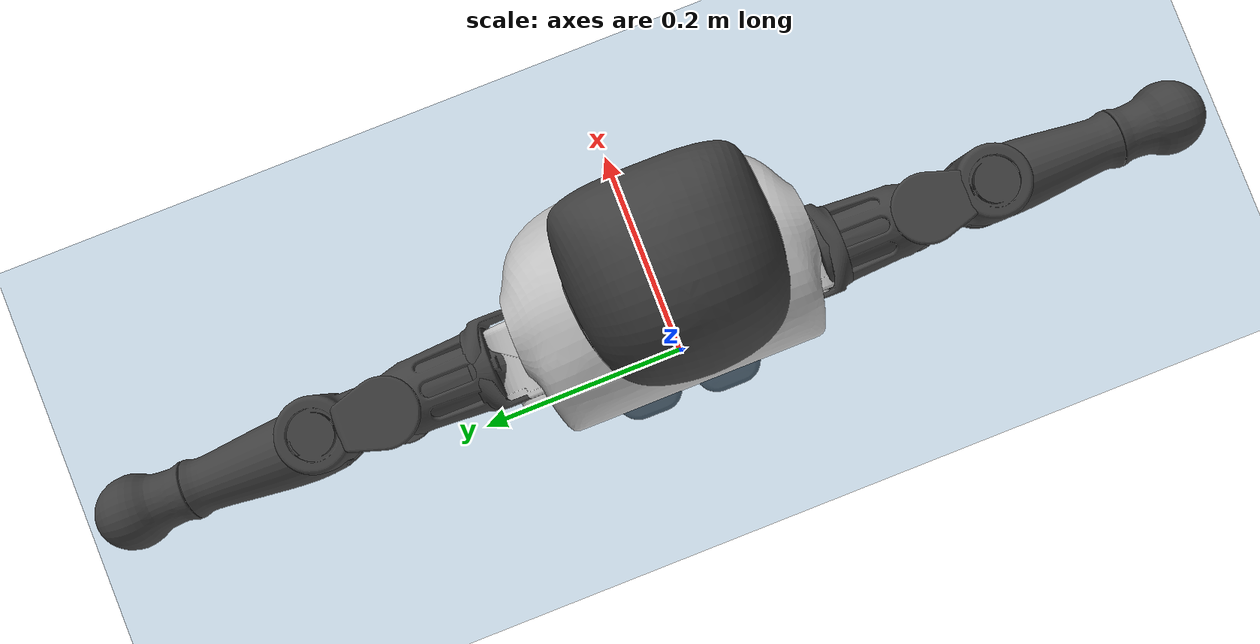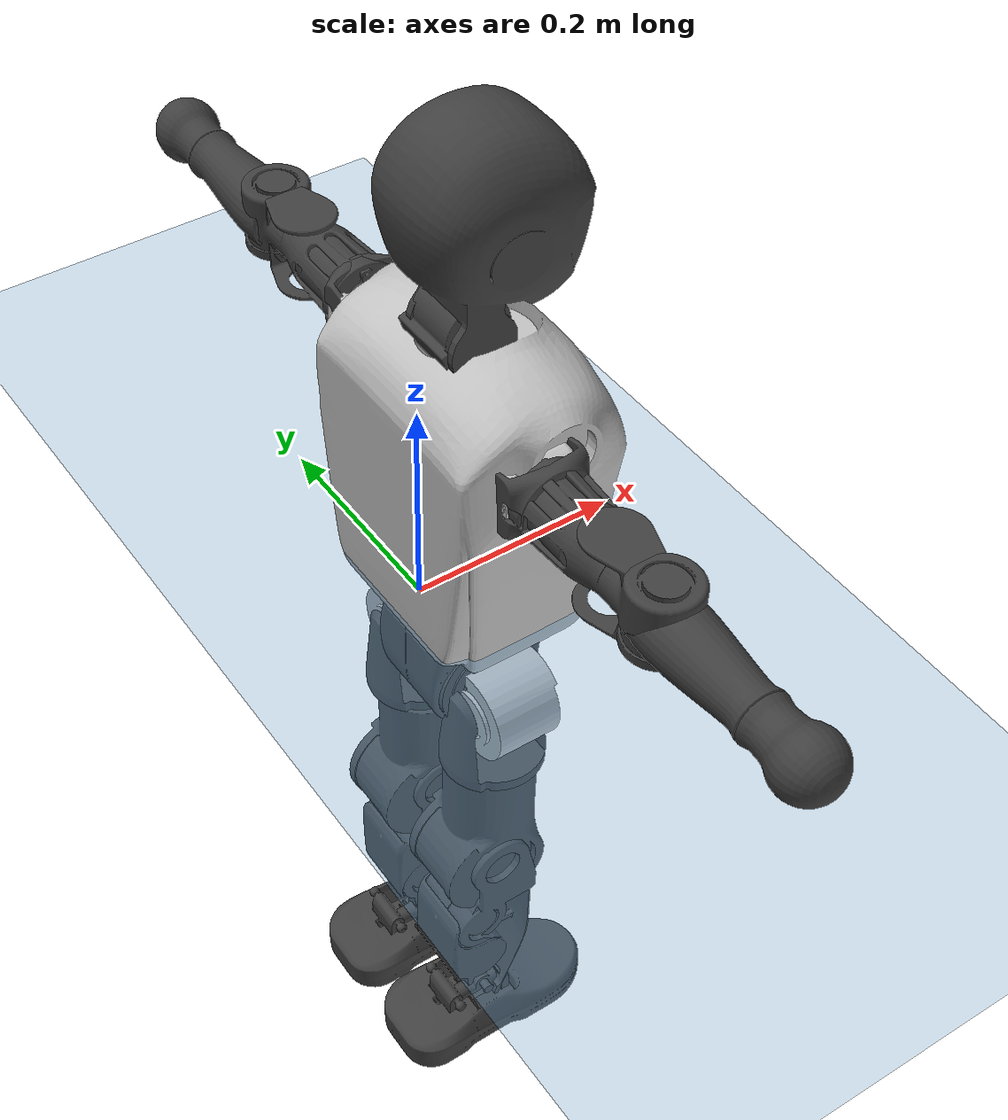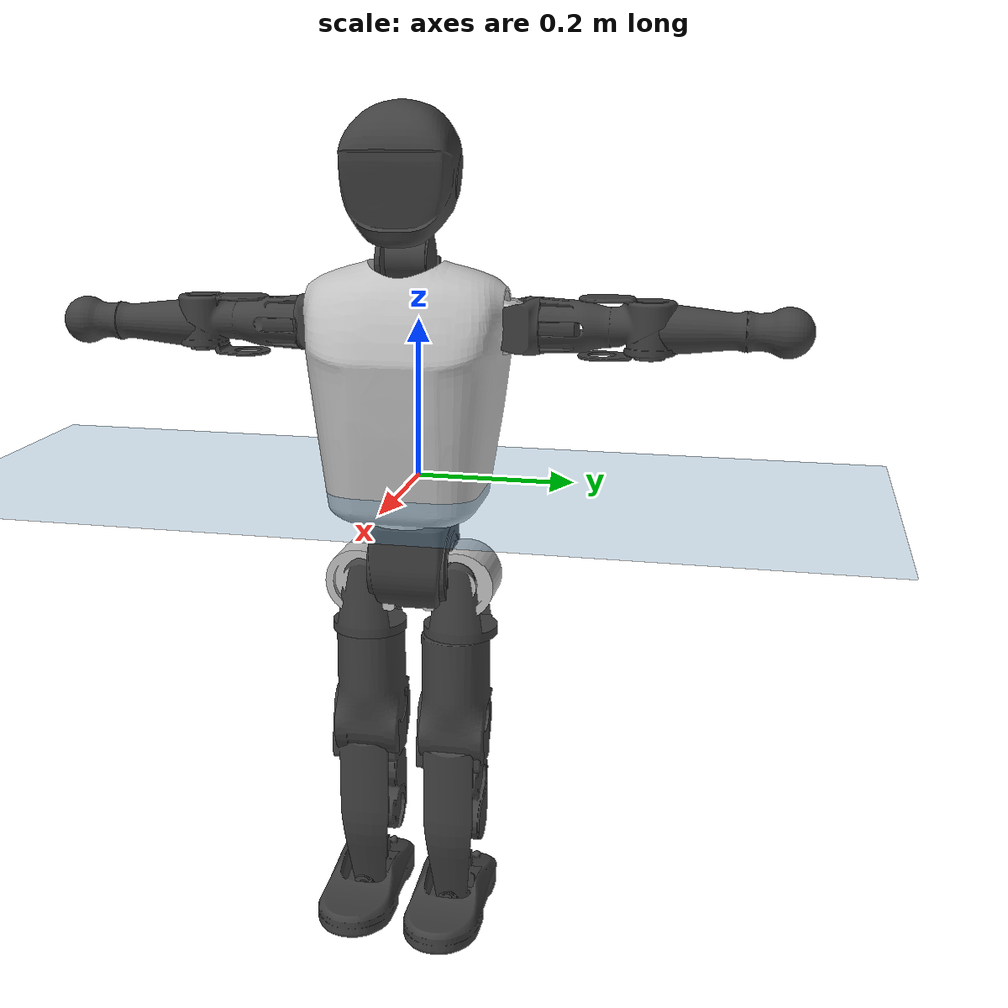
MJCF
<mujoco model="T1">
  <compiler angle="radian" assetdir="assets" balanceinertia="true" inertiafromgeom="false"/>

  <option timestep="0.005" density="1.2" viscosity="2e-05"/>

  <size nkey="1"/>

  <visual>
    <quality shadowsize="8192"/>
    <map shadowclip="0.5"/>
  </visual>

  <default>
    <default class="/">
      <joint armature="0.01" damping="0.01" frictionloss="0.1"/>
      <geom contype="0" conaffinity="0" group="1" solref="-1000 -80"/>
      <site size="0.01 0.005 0.005" group="5"/>
      <general forcelimited="true" biastype="affine" gainprm="25" biasprm="0 -25 -0.6"/>
      <default class="t1">
        <geom rgba="0.25 0.25 0.25 1"/>
        <default class="visual">
          <geom type="mesh" group="2"/>
        </default>
        <default class="collision">
          <geom group="3"/>
        </default>
        <default class="foot">
          <geom size="0.1115 0.05 0.015" type="box" condim="6" group="4" priority="1" solimp="0.015 1 0.015"/>
        </default>
        <default class="reward_collision_sphere">
          <geom group="5" rgba="1 0 0 1"/>
        </default>
      </default>
    </default>
  </default>

  <asset>
    <texture type="skybox" colorspace="auto" name="//unnamed_texture_0" builtin="gradient" rgb1="0.95 0.95 0.95" rgb2="0.95 0.95 0.95" width="100" height="600"/>
    <texture type="2d" colorspace="auto" name="texplane" builtin="checker" rgb1="0.345 0.575 0.748" rgb2="0.345 0.575 0.748" markrgb="1 1 1" width="512" height="512"/>
    <material name="MatPlane" class="/" texture="texplane" texuniform="true" texrepeat="2 2" specular="0.9"/>
    <mesh name="Trunk" class="/" file="Trunk.stl"/>
    <mesh name="H1" class="/" file="H1.stl"/>
    <mesh name="H2" class="/" file="H2.stl"/>
    <mesh name="AL1" class="/" file="AL1.stl"/>
    <mesh name="AL2" class="/" file="AL2.stl"/>
    <mesh name="AL3" class="/" file="AL3.stl"/>
    <mesh name="left_hand_link" class="/" file="left_hand_link.stl"/>
    <mesh name="AR1" class="/" file="AR1.stl"/>
    <mesh name="AR2" class="/" file="AR2.stl"/>
    <mesh name="AR3" class="/" file="AR3.stl"/>
    <mesh name="right_hand_link" class="/" file="right_hand_link.stl"/>
    <mesh name="Waist" class="/" file="Waist.stl"/>
    <mesh name="Hip_Pitch_Left" class="/" file="Hip_Pitch_Left.stl"/>
    <mesh name="Hip_Roll_Left" class="/" file="Hip_Roll_Left.stl"/>
    <mesh name="Hip_Yaw_Left" class="/" file="Hip_Yaw_Left.stl"/>
    <mesh name="Shank_Left" class="/" file="Shank_Left.stl"/>
    <mesh name="Ankle_Cross_Left" class="/" file="Ankle_Cross_Left.stl"/>
    <mesh name="left_foot_link" class="/" file="left_foot_link.stl"/>
    <mesh name="Hip_Pitch_Right" class="/" file="Hip_Pitch_Right.stl"/>
    <mesh name="Hip_Roll_Right" class="/" file="Hip_Roll_Right.stl"/>
    <mesh name="Hip_Yaw_Right" class="/" file="Hip_Yaw_Right.stl"/>
    <mesh name="Shank_Right" class="/" file="Shank_Right.stl"/>
    <mesh name="Ankle_Cross_Right" class="/" file="Ankle_Cross_Right.stl"/>
    <mesh name="right_foot_link" class="/" file="right_foot_link.stl"/>
  </asset>

  <worldbody>
    <geom name="floor" class="/" size="100 100 0.125" type="plane" group="0" material="MatPlane"/>
    <light name="toplight_shadow" class="/" pos="0 0 5" dir="0.0990148 0.0990148 -0.990148" type="directional" ambient="0.04 0.04 0.04" diffuse="0.55 0.55 0.55" specular="0.12 0.12 0.12"/>
    <light name="toplight_fill" class="/" pos="0 0 5" dir="0.0990148 0.0990148 -0.990148" type="directional" castshadow="false" ambient="0.04 0.04 0.04" diffuse="0.3 0.3 0.3" specular="0.08 0.08 0.08"/>
    <body name="trunk" childclass="t1" pos="-0.00144434 0.000107614 -0.000582403" quat="0.999997 0.00224845 0.000905694 0.000976057">
      <inertial pos="0.0402585 0.00311422 0.09317" quat="0.999929 -0.00413299 -0.00812433 0.00765966" mass="4.8126" diaginertia="0.0135623 0.00726223 0.0339828"/>
      <joint name="//unnamed_joint_0" type="free" armature="0" damping="0" frictionloss="0"/>
      <geom name="//unnamed_geom_1" class="visual" rgba="0.76 0.76 0.76 1" mesh="Trunk"/>
      <geom name="//unnamed_geom_2" class="collision" size="0.0548333 0.073111 0.109667" pos="0.0410255 0 0.106624" type="box"/>
      <geom name="//unnamed_geom_3" class="reward_collision_sphere" size="0.0840777" pos="0.0410255 0 0.0888533"/>
      <geom name="//unnamed_geom_4" class="reward_collision_sphere" size="0.0109667" pos="0.0410255 0.0527884 0"/>
      <geom name="//unnamed_geom_5" class="reward_collision_sphere" size="0.0109667" pos="0.0410255 -0.0527884 0"/>
      <geom name="//unnamed_geom_6" class="reward_collision_sphere" size="0.0109667" pos="0.0410255 0.0664512 0.159936"/>
      <geom name="//unnamed_geom_7" class="reward_collision_sphere" size="0.0109667" pos="0.0410255 -0.0664512 0.159936"/>
      <site name="imu" pos="-0.00999218 0.010868 0.0101232" size="0.0073111"/>
      <camera name="track" pos="0 -1.24208 0" quat="0.707107 0.707107 0 0" mode="trackcom"/>
      <camera name="ego_camera" pos="0.0834186 0 0.373184" quat="-0.5 -0.5 0.5 0.5"/>
      <body name="H1" pos="0.0407364 -0.000110918 0.218322" quat="1 -0.00026479 0.000198429 0.0001084">
        <inertial pos="-0.000239582 -0.00701168 0.0512667" quat="0.750479 -0.0277251 0.00463828 0.660296" mass="0.183254" diaginertia="3.83262e-05 2.2814e-05 9.23063e-05"/>
        <joint name="AAHead_yaw" pos="0 0 0" axis="-0.0253253 -0.00344302 0.999673" range="-1.60414 1.52741" armature="0.00777618" damping="0.0117605" frictionloss="0.0755598"/>
        <geom name="//unnamed_geom_8" class="visual" mesh="H1"/>
        <body name="H2" pos="-0.00267083 -0.00542285 0.0574606" quat="0.999999 -7.80606e-05 -0.00123869 -0.000317149">
          <inertial pos="0.000544193 -0.00402127 0.0875393" quat="0.988503 0.112036 -0.0753296 -0.0680889" mass="0.238485" diaginertia="0.000281667 0.000177248 0.000923522"/>
          <joint name="Head_pitch" pos="0 0 0" axis="-0.00325302 -0.999993 -0.00171181" range="-1.23624 0.348928" armature="0.00932287" damping="0.00352081" frictionloss="0.0469511"/>
          <geom name="//unnamed_geom_9" class="visual" mesh="H2"/>
          <geom name="//unnamed_geom_10" class="collision" size="0.0584888" pos="0.00683759 0 0.0977386"/>
          <geom name="//unnamed_geom_11" class="reward_collision_sphere" size="0.0657999" pos="0.0136752 0 0.0888533"/>
        </body>
      </body>
      <body name="AL1" pos="0.040018 0.071765 0.200371" quat="1 -0.000312927 0.00057723 -0.000234621">
        <inertial pos="0.0048658 0.0300591 -0.00312373" quat="0.497199 0.493455 -0.506031 0.503218" mass="0.200355" diaginertia="0.000198365 0.0001167 0.000162567"/>
        <joint name="Left_Shoulder_Pitch" pos="0 0 0" axis="0.00598525 0.999609 -0.0273163" stiffness="0.00791452" range="-3.29678 1.22489" armature="0.00647543" damping="0.00670585" frictionloss="0.0724757"/>
        <geom name="//unnamed_geom_12" class="visual" rgba="0.76 0.76 0.76 1" mesh="AL1"/>
        <body name="AL2" pos="0.00468735 0.0343125 0.00202117" quat="1 -3.37515e-05 -8.83565e-06 -0.000171302">
          <inertial pos="0.00239028 0.0238813 0.00379354" quat="0.484022 0.502601 -0.490626 0.521921" mass="0.0662513" diaginertia="6.0233e-05 3.19125e-05 0.000100062"/>
          <joint name="Left_Shoulder_Roll" pos="0 0 0" axis="-0.999999 0.000687984 0.00105083" range="-1.59166 1.7886" armature="0.00725346" damping="0.00623675" frictionloss="0.0738477"/>
          <geom name="//unnamed_geom_13" class="visual" mesh="AL2"/>
          <body name="AL3" pos="-0.00075677 0.0383075 0.000714369" quat="1 0.00030315 -0.000598243 -0.00026332">
            <inertial pos="0.000653714 0.0523273 0.00132489" quat="0.699083 0.71453 0.00326699 0.0268194" mass="0.387174" diaginertia="0.00186783 0.00113722 0.000363408"/>
            <joint name="Left_Elbow_Pitch" pos="0 0 0" axis="0.00569864 -0.999978 -0.00350703" stiffness="0.000479606" range="-2.30406 2.21881" armature="0.00721955" damping="0" frictionloss="0.0508793"/>
            <geom name="//unnamed_geom_14" class="visual" mesh="AL3"/>
            <geom name="//unnamed_geom_15" class="collision" size="0.0219333 0.0548333" pos="0 0.031052 0" quat="0.707105 0.707108 0 0" type="cylinder"/>
            <geom name="//unnamed_geom_16" class="reward_collision_sphere" size="0.02632"/>
            <body name="left_hand_link" pos="-0.00422926 0.0899138 -0.00146338" quat="0.999999 -0.00013287 0.000205758 -0.0011034">
              <inertial pos="-0.0044587 0.0700686 0.00444524" quat="0.703381 0.710802 0.000905254 -0.00396449" mass="0.128253" diaginertia="0.00123502 0.000717262 0.000114659"/>
              <joint name="Left_Elbow_Yaw" pos="0 0 0" axis="-0.000590675 -0.00851121 0.999964" range="-2.43913 -0.0433461" armature="0.00676684" damping="0.00893498" frictionloss="0.0721649"/>
              <geom name="//unnamed_geom_17" class="visual" mesh="left_hand_link"/>
              <geom name="//unnamed_geom_18" class="collision" size="0.0219333 0.0639722" pos="0 0.0807351 0" quat="0.707105 0.707108 0 0" type="cylinder"/>
              <geom name="//unnamed_geom_19" class="reward_collision_sphere" size="0.0365555"/>
              <geom name="//unnamed_geom_20" class="reward_collision_sphere" size="0.0255889" pos="0 0.0683143 0"/>
              <geom name="//unnamed_geom_21" class="reward_collision_sphere" size="0.0255889" pos="0 0.133523 0"/>
            </body>
          </body>
        </body>
      </body>
      <body name="AR1" pos="0.0349416 -0.0612245 0.192987" quat="0.999994 0.00333643 -0.000704448 -0.000527959">
        <inertial pos="-0.000513686 -0.0289258 0.00060366" quat="0.506152 0.494869 -0.504379 0.494486" mass="0.191113" diaginertia="0.000196354 0.000108493 0.000152564"/>
        <joint name="Right_Shoulder_Pitch" pos="0 0 0" axis="-0.0109561 -0.999919 0.00649296" range="-1.24991 3.2969" armature="0.00680966" damping="0" frictionloss="0.0714089"/>
        <geom name="//unnamed_geom_22" class="visual" rgba="0.76 0.76 0.76 1" mesh="AR1"/>
        <body name="AR2" pos="-0.00147683 -0.0252904 0.00548632" quat="0.999999 -0.000528157 0.00128998 -0.000972907">
          <inertial pos="0.00153765 -0.0226848 -0.000408134" quat="0.510355 0.488579 -0.505149 0.495634" mass="0.0643638" diaginertia="6.11655e-05 3.25607e-05 0.000100702"/>
          <joint name="Right_Shoulder_Roll" pos="0 0 0" axis="-0.999791 -0.00993569 -0.0178951" stiffness="0.00482901" range="-1.74277 1.5703" armature="0.00736185" damping="0.0213198" frictionloss="0.0646606"/>
          <geom name="//unnamed_geom_23" class="visual" mesh="AR2"/>
          <body name="AR3" pos="0.000641406 -0.037282 -0.00104191" quat="0.999998 -0.00187096 -0.000771133 -0.000676169">
            <inertial pos="-0.00719632 -0.0513261 0.00117589" quat="0.707536 0.706582 8.5038e-05 0.0116017" mass="0.391802" diaginertia="0.00180006 0.00107203 0.000317635"/>
            <joint name="Right_Elbow_Pitch" pos="0 0 0" axis="-0.00137377 0.999996 0.0024148" range="-2.28954 2.41998" armature="0.00730198" damping="0.00343297" frictionloss="0.0730807"/>
            <geom name="//unnamed_geom_24" class="visual" mesh="AR3"/>
            <geom name="//unnamed_geom_25" class="collision" size="0.0219333 0.0548333" pos="0 -0.031052 0" quat="0.707105 0.707108 0 0" type="cylinder"/>
            <geom name="//unnamed_geom_26" class="reward_collision_sphere" size="0.02632"/>
            <body name="right_hand_link" pos="-0.000558263 -0.0897257 -0.00472801" quat="0.999998 -0.000550595 0.000664536 -0.00154184">
              <inertial pos="-0.0062093 -0.0665915 0.0052109" quat="0.707088 0.707124 0.000996115 -0.000986781" mass="0.141708" diaginertia="0.00144333 0.000829581 0.000120524"/>
              <joint name="Right_Elbow_Yaw" pos="0 0 0" axis="0.0101033 -0.00375668 0.999942" range="0.0123614 2.52591" armature="0.00694092" damping="0.0148138" frictionloss="0.0702792"/>
              <geom name="//unnamed_geom_27" class="visual" mesh="right_hand_link"/>
              <geom name="//unnamed_geom_28" class="collision" size="0.0219333 0.0639722" pos="0 -0.0807351 0" quat="0.707105 0.707108 0 0" type="cylinder"/>
              <geom name="//unnamed_geom_29" class="reward_collision_sphere" size="0.0365555"/>
              <geom name="//unnamed_geom_30" class="reward_collision_sphere" size="0.0255889" pos="0 -0.0683143 0"/>
              <geom name="//unnamed_geom_31" class="reward_collision_sphere" size="0.0255889" pos="0 -0.133523 0"/>
            </body>
          </body>
        </body>
      </body>
      <body name="Waist" pos="0.0478917 0.00433683 -0.10266" quat="1 -4.59367e-07 0.000132473 -0.000369672">
        <inertial pos="0.00495435 -0.00321233 0.00438726" quat="0.982484 0.00157471 -0.185887 0.0130169" mass="1.06996" diaginertia="0.00079645 0.000500494 0.00275895"/>
        <joint name="Waist" pos="0 0 0" axis="-0.00453567 0.00461213 0.999979" range="-1.57637 1.55502" armature="0.00806749" damping="0.0338394" frictionloss="0.0699923"/>
        <geom name="//unnamed_geom_32" class="visual" mesh="Waist"/>
        <body name="Hip_Pitch_Left" pos="-0.000573374 0.0636451 0.000540098" quat="1 8.99357e-05 0.0001529 0.000274303">
          <inertial pos="0.000298307 -0.00311239 -0.0114757" quat="0.974027 0.225634 0.0189703 0.000451596" mass="0.408473" diaginertia="0.000268425 0.000135198 0.000691402"/>
          <joint name="Left_Hip_Pitch" pos="0 0 0" axis="-0.00303822 0.999993 0.00226569" range="-1.75579 1.48735" armature="0.0066185" damping="0.0182592" frictionloss="0.0756905"/>
          <geom name="//unnamed_geom_33" class="visual" rgba="0.76 0.76 0.76 1" mesh="Hip_Pitch_Left"/>
          <body name="Hip_Roll_Left" pos="-0.004993 -0.00421357 -0.0162039" quat="0.999999 -0.000318507 0.000200812 -0.00117258">
            <inertial pos="-0.00116083 -0.000777691 -0.0440433" quat="0.702826 -0.00790544 -0.0157247 0.711144" mass="0.143668" diaginertia="0.000236321 0.000139763 0.000287999"/>
            <joint name="Left_Hip_Roll" pos="0 0 0" axis="-0.999994 -0.00334708 -0.000145093" stiffness="0.0222914" range="-1.58223 0.0961566" armature="0.00830535" damping="0.0147241" frictionloss="0.0814193"/>
            <geom name="//unnamed_geom_34" class="visual" mesh="Hip_Roll_Left"/>
            <geom name="//unnamed_geom_35" class="reward_collision_sphere" size="0.0402111"/>
            <body name="Hip_Yaw_Left" pos="0.000334845 -0.00600136 -0.0806509" quat="1 0.000323555 -0.000411557 8.85093e-05">
              <inertial pos="-0.00436939 -0.00101025 -0.0780331" quat="0.695008 -0.0296279 -0.0121054 0.718289" mass="0.878592" diaginertia="0.00391313 0.00250862 0.00143328"/>
              <joint name="Left_Hip_Yaw" pos="0 0 0" axis="-0.00306119 0.000640932 -0.999995" range="-1.06895 0.861402" armature="0.00695953" damping="0.0445056" frictionloss="0.0712108"/>
              <geom name="//unnamed_geom_36" class="visual" mesh="Hip_Yaw_Left"/>
              <geom name="//unnamed_geom_37" class="collision" size="0.0365555 0.0584888" type="cylinder"/>
              <body name="Shank_Left" pos="-0.00758085 -0.00347061 -0.114311" quat="1 -1.87701e-05 5.11759e-05 2.83795e-05">
                <inertial pos="-0.00340103 0.000706692 -0.106757" quat="0.997729 -0.00305456 -0.0322085 0.059072" mass="0.648931" diaginertia="0.00502492 0.00320552 0.00106606"/>
                <joint name="Left_Knee_Pitch" pos="0 0 0" axis="0.00486484 0.999933 0.0104579" range="-0.0145767 2.32079" armature="0.0075412" damping="0" frictionloss="0.0667861"/>
                <geom name="//unnamed_geom_38" class="visual" mesh="Shank_Left"/>
                <geom name="//unnamed_geom_39" class="collision" size="0.0365555 0.0548333" pos="0 0 -0.106624" type="cylinder"/>
                <geom name="//unnamed_geom_40" class="reward_collision_sphere" size="0.0475222"/>
                <body name="Ankle_Cross_Left" pos="-0.00250926 -0.00321141 -0.245685" quat="0.999999 0.00018546 -0.000310078 -0.00110369">
                  <inertial pos="0.00270011 -0.00519026 -0.00771663" quat="0.444574 0.551725 0.549142 0.443167" mass="0.0292522" diaginertia="4.28773e-06 2.52522e-06 6.30564e-06"/>
                  <joint name="Left_Ankle_Pitch" pos="0 0 0" axis="0.0152923 0.999854 0.0076355" range="-0.841997 0.392706" armature="0.00903446" damping="0.0130643" frictionloss="0.0702298"/>
                  <geom name="//unnamed_geom_41" class="visual" mesh="Ankle_Cross_Left"/>
                  <body name="left_foot_link" pos="-0.00177558 -0.00126593 -0.015432" quat="0.999995 0.00224158 -0.00055525 -0.00210081">
                    <inertial pos="0.00493804 0.00066413 -0.00905612" quat="-0.00174646 0.621207 0.00158191 0.783643" mass="0.265664" diaginertia="0.000390287 0.000221187 0.00113463"/>
                    <joint name="Left_Ankle_Roll" pos="0 0 0" axis="-0.999987 0.00370143 -0.00337425" stiffness="0.0180198" range="-0.347804 0.54699" armature="0.00709434" damping="0" frictionloss="0.0915542"/>
                    <geom name="//unnamed_geom_42" class="visual" mesh="left_foot_link"/>
                    <geom name="left_foot" class="foot" size="0.0929134 0.0381045 0.00987754" pos="0.00683759 0 -0.013328"/>
                    <geom name="//unnamed_geom_44" class="reward_collision_sphere" size="0.0380177" pos="0.00683759 0 -0.013328"/>
                    <geom name="//unnamed_geom_45" class="reward_collision_sphere" size="0.0219333" pos="0.0649571 -0.0142839 -0.013328"/>
                    <geom name="//unnamed_geom_46" class="reward_collision_sphere" size="0.0219333" pos="-0.0478631 -0.0142839 -0.013328"/>
                    <site name="left_foot" class="foot" pos="0.00683759 0 -0.013328" size="0.0073111"/>
                  </body>
                </body>
              </body>
            </body>
          </body>
        </body>
        <body name="Hip_Pitch_Right" pos="0.00538309 -0.0635753 -0.000638914" quat="0.999998 0.00135786 0.00171433 -0.000286847">
          <inertial pos="0.000756683 0.00731216 -0.017097" quat="0.973476 -0.227245 0.0252813 -0.00808509" mass="0.401414" diaginertia="0.00025799 0.000133279 0.000647426"/>
          <joint name="Right_Hip_Pitch" pos="0 0 0" axis="0.0064396 -0.999979 0.000496519" range="-1.59146 1.83204" armature="0.00655415" damping="0.0136363" frictionloss="0.0707179"/>
          <geom name="//unnamed_geom_47" class="visual" rgba="0.76 0.76 0.76 1" mesh="Hip_Pitch_Right"/>
          <body name="Hip_Roll_Right" pos="-0.00555259 0.00403056 -0.014704" quat="1 -3.98625e-06 8.46015e-06 -0.000309409">
            <inertial pos="0.00187036 0.000812693 -0.0498661" quat="0.702055 -0.00646944 -0.00924592 0.712034" mass="0.139173" diaginertia="0.000256974 0.000133834 0.000281359"/>
            <joint name="Right_Hip_Roll" pos="0 0 0" axis="-0.999987 -0.00480745 -0.0017543" range="-0.200307 1.6977" armature="0.00831263" damping="0.0324276" frictionloss="0.0941955"/>
            <geom name="//unnamed_geom_48" class="visual" mesh="Hip_Roll_Right"/>
            <geom name="//unnamed_geom_49" class="reward_collision_sphere" size="0.0402111"/>
            <body name="Hip_Yaw_Right" pos="-0.00499569 -0.000315116 -0.0747363" quat="0.999999 -0.000847019 -0.000616443 0.000555789">
              <inertial pos="-0.00715328 0.0015649 -0.0810165" quat="0.717835 -0.0392282 0.000341375 0.695107" mass="0.854652" diaginertia="0.00414226 0.00230995 0.00154233"/>
              <joint name="Right_Hip_Yaw" pos="0 0 0" axis="-0.0178981 0.0298285 -0.999395" range="-1.01524 0.987371" armature="0.0085048" damping="0" frictionloss="0.0806068"/>
              <geom name="//unnamed_geom_50" class="visual" mesh="Hip_Yaw_Right"/>
              <geom name="//unnamed_geom_51" class="collision" size="0.0365555 0.0584888" type="cylinder"/>
              <body name="Shank_Right" pos="-0.0147572 -0.00530377 -0.119059" quat="1 -0.000373449 0.000135202 -0.000433932">
                <inertial pos="-0.00467346 0.00266248 -0.107378" quat="0.998072 0.00623144 -0.0232855 -0.0571882" mass="0.687669" diaginertia="0.0049934 0.00320089 0.0010605"/>
                <joint name="Right_Knee_Pitch" pos="0 0 0" axis="0.0179496 -0.999714 -0.0157887" stiffness="0.0286652" range="-2.32871 -0.0372376" armature="0.00713079" damping="0" frictionloss="0.066837"/>
                <geom name="//unnamed_geom_52" class="visual" mesh="Shank_Right"/>
                <geom name="//unnamed_geom_53" class="collision" size="0.0365555 0.0548333" pos="0 0 -0.106624" type="cylinder"/>
                <geom name="//unnamed_geom_54" class="reward_collision_sphere" size="0.0475222"/>
                <body name="Ankle_Cross_Right" pos="0.00274317 -0.00444017 -0.244002" quat="0.999998 0.00105515 -0.00144509 0.0010174">
                  <inertial pos="-0.00494148 -0.00303661 -0.00816721" quat="0.444738 0.550765 0.550288 0.442774" mass="0.0284229" diaginertia="4.75748e-06 2.40312e-06 6.52848e-06"/>
                  <joint name="Right_Ankle_Pitch" pos="0 0 0" axis="0.00712562 -0.999947 0.00749606" stiffness="0.000844702" range="-0.205038 0.850731" armature="0.00821554" damping="0.00467845" frictionloss="0.064444"/>
                  <geom name="//unnamed_geom_55" class="visual" mesh="Ankle_Cross_Right"/>
                  <body name="right_foot_link" pos="-0.00235599 -0.00404215 -0.0109725" quat="1 -0.00025417 -0.000356283 -0.000200777">
                    <inertial pos="0.000130451 -0.00310019 -0.00880707" quat="-6.98844e-05 0.620706 -3.2451e-06 0.784044" mass="0.232307" diaginertia="0.000375457 0.000208596 0.00117776"/>
                    <joint name="Right_Ankle_Roll" pos="0 0 0" axis="-0.999955 0.00669596 0.00667953" range="-0.48619 0.453603" armature="0.0079054" damping="0.00692085" frictionloss="0.0955968"/>
                    <geom name="//unnamed_geom_56" class="visual" mesh="right_foot_link"/>
                    <geom name="right_foot" class="foot" size="0.0941141 0.0405393 0.0103352" pos="0.00683759 0 -0.013328"/>
                    <geom name="//unnamed_geom_58" class="reward_collision_sphere" size="0.0292444"/>
                    <geom name="//unnamed_geom_59" class="reward_collision_sphere" size="0.0219333" pos="0.00683759 0 -0.013328"/>
                    <geom name="//unnamed_geom_60" class="reward_collision_sphere" size="0.0219333" pos="0.0649571 0.0142839 -0.013328"/>
                    <geom name="//unnamed_geom_61" class="reward_collision_sphere" size="0.0219333" pos="-0.0478631 0.0142839 -0.013328"/>
                    <site name="right_foot" class="foot" pos="0.00683759 0 -0.013328" size="0.0073111"/>
                  </body>
                </body>
              </body>
            </body>
          </body>
        </body>
      </body>
    </body>
  </worldbody>

  <contact>
    <pair class="/" geom1="floor" geom2="left_foot" name="//unnamed_contact_0"/>
    <pair class="/" geom1="floor" geom2="right_foot" name="//unnamed_contact_1"/>
  </contact>

  <actuator>
    <general name="AAHead_yaw" class="/" joint="AAHead_yaw" forcerange="-4.81833 4.81833" gainprm="21.1983" biasprm="0 -21.1983 -0.43153"/>
    <general name="Head_pitch" class="/" joint="Head_pitch" forcerange="-5.43077 5.43077" gainprm="21.1983" biasprm="0 -21.1983 -0.43153"/>
    <general name="Left_Shoulder_Pitch" class="/" joint="Left_Shoulder_Pitch" forcerange="-16.7548 16.7548" gainprm="21.1983" biasprm="0 -21.1983 -0.43153"/>
    <general name="Left_Shoulder_Roll" class="/" joint="Left_Shoulder_Roll" forcerange="-13.2671 13.2671" gainprm="21.1983" biasprm="0 -21.1983 -0.43153"/>
    <general name="Left_Elbow_Pitch" class="/" joint="Left_Elbow_Pitch" forcerange="-13.2074 13.2074" gainprm="21.1983" biasprm="0 -21.1983 -0.43153"/>
    <general name="Left_Elbow_Yaw" class="/" joint="Left_Elbow_Yaw" forcerange="-13.0282 13.0282" gainprm="21.1983" biasprm="0 -21.1983 -0.43153"/>
    <general name="Right_Shoulder_Pitch" class="/" joint="Right_Shoulder_Pitch" forcerange="-12.1503 12.1503" gainprm="21.1983" biasprm="0 -21.1983 -0.43153"/>
    <general name="Right_Shoulder_Roll" class="/" joint="Right_Shoulder_Roll" forcerange="-13.6535 13.6535" gainprm="21.1983" biasprm="0 -21.1983 -0.43153"/>
    <general name="Right_Elbow_Pitch" class="/" joint="Right_Elbow_Pitch" forcerange="-13.485 13.485" gainprm="21.1983" biasprm="0 -21.1983 -0.43153"/>
    <general name="Right_Elbow_Yaw" class="/" joint="Right_Elbow_Yaw" forcerange="-13.4259 13.4259" gainprm="21.1983" biasprm="0 -21.1983 -0.43153"/>
    <general name="Waist" class="/" joint="Waist" forcerange="-22.4013 22.4013" gainprm="21.1983" biasprm="0 -21.1983 -0.43153"/>
    <general name="Left_Hip_Pitch" class="/" joint="Left_Hip_Pitch" forcerange="-30.4834 30.4834" gainprm="21.1983" biasprm="0 -21.1983 -0.43153"/>
    <general name="Left_Hip_Roll" class="/" joint="Left_Hip_Roll" forcerange="-22.1099 22.1099" gainprm="21.1983" biasprm="0 -21.1983 -0.43153"/>
    <general name="Left_Hip_Yaw" class="/" joint="Left_Hip_Yaw" forcerange="-22.202 22.202" gainprm="21.1983" biasprm="0 -21.1983 -0.43153"/>
    <general name="Left_Knee_Pitch" class="/" joint="Left_Knee_Pitch" forcerange="-44.8136 44.8136" gainprm="21.1983" biasprm="0 -21.1983 -0.43153"/>
    <general name="Left_Ankle_Pitch" class="/" joint="Left_Ankle_Pitch" forcerange="-11.4553 11.4553" gainprm="21.1983" biasprm="0 -21.1983 -0.43153"/>
    <general name="Left_Ankle_Roll" class="/" joint="Left_Ankle_Roll" forcerange="-12.8442 12.8442" gainprm="21.1983" biasprm="0 -21.1983 -0.43153"/>
    <general name="Right_Hip_Pitch" class="/" joint="Right_Hip_Pitch" forcerange="-34.5861 34.5861" gainprm="21.1983" biasprm="0 -21.1983 -0.43153"/>
    <general name="Right_Hip_Roll" class="/" joint="Right_Hip_Roll" forcerange="-18.1096 18.1096" gainprm="21.1983" biasprm="0 -21.1983 -0.43153"/>
    <general name="Right_Hip_Yaw" class="/" joint="Right_Hip_Yaw" forcerange="-24.1569 24.1569" gainprm="21.1983" biasprm="0 -21.1983 -0.43153"/>
    <general name="Right_Knee_Pitch" class="/" joint="Right_Knee_Pitch" forcerange="-46.6689 46.6689" gainprm="21.1983" biasprm="0 -21.1983 -0.43153"/>
    <general name="Right_Ankle_Pitch" class="/" joint="Right_Ankle_Pitch" forcerange="-13.8628 13.8628" gainprm="21.1983" biasprm="0 -21.1983 -0.43153"/>
    <general name="Right_Ankle_Roll" class="/" joint="Right_Ankle_Roll" forcerange="-9.46151 9.46151" gainprm="21.1983" biasprm="0 -21.1983 -0.43153"/>
  </actuator>

  <sensor>
    <gyro site="imu" name="imu_angular_velocity"/>
    <velocimeter site="imu" name="imu_linear_velocity"/>
    <framelinvel objtype="site" objname="left_foot" name="left_foot_global_linear_velocity"/>
    <framelinvel objtype="site" objname="right_foot" name="right_foot_global_linear_velocity"/>
  </sensor>

  <keyframe>
    <key name="home" qpos="0 0 0.6385 1 0 0 0 0 0 0 1.4 0 -0.4 0 -1.4 0 0.4 0 -0.4 0 0 0.8 -0.4 0 0.4 0 0 -0.8 0.4 0"/>
  </keyframe>
</mujoco>
